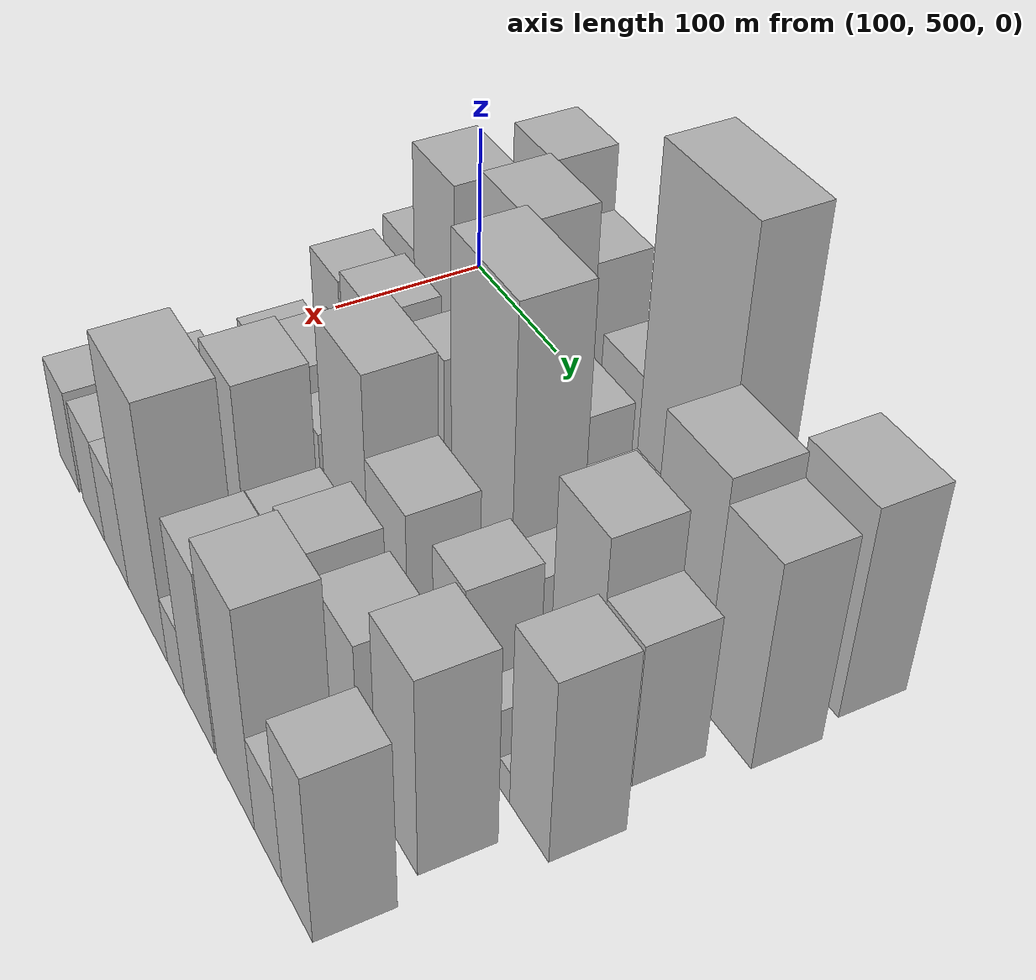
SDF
<sdf version="1.6">
 <world name="default">
  <model name="building_37">
   <static>1</static>
   <pose>100.0000 539.4834 0 0.000000 0.000000 0.000000</pose>
   <link name="link">
    <pose>0 0 15.00 0 0 0</pose>
    <collision name="collision"><geometry><box><size>40.0000 17.1339 30.0000</size></box></geometry></collision>
    <visual name="visual">
     <cast_shadows>0</cast_shadows>
     <geometry><box><size>40.0000 17.1339 30.0000</size></box></geometry>
     <material>
      <script>
       <uri>model://HANNAS_wall/materials/scripts</uri>
       <uri>model://HANNAS_wall/materials/textures</uri>
       <name>vrc/HANNAS_wall</name>
      </script>
     </material>
    </visual>
   </link>
  </model>
  <model name="building_38">
   <static>1</static>
   <pose>100.0000 562.8579 0 0.000000 0.000000 0.000000</pose>
   <link name="link">
    <pose>0 0 27.00 0 0 0</pose>
    <collision name="collision"><geometry><box><size>40.0000 29.6151 54.0000</size></box></geometry></collision>
    <visual name="visual">
     <cast_shadows>0</cast_shadows>
     <geometry><box><size>40.0000 29.6151 54.0000</size></box></geometry>
     <material>
      <script>
       <uri>model://HANNAS_wall/materials/scripts</uri>
       <uri>model://HANNAS_wall/materials/textures</uri>
       <name>vrc/HANNAS_wall</name>
      </script>
     </material>
    </visual>
   </link>
  </model>
  <model name="building_39">
   <static>1</static>
   <pose>100.0000 600.3225 0 0.000000 0.000000 0.000000</pose>
   <link name="link">
    <pose>0 0 75.00 0 0 0</pose>
    <collision name="collision"><geometry><box><size>40.0000 45.3142 150.0000</size></box></geometry></collision>
    <visual name="visual">
     <cast_shadows>0</cast_shadows>
     <geometry><box><size>40.0000 45.3142 150.0000</size></box></geometry>
     <material>
      <script>
       <uri>model://HANNAS_wall/materials/scripts</uri>
       <uri>model://HANNAS_wall/materials/textures</uri>
       <name>vrc/HANNAS_wall</name>
      </script>
     </material>
    </visual>
   </link>
  </model>
  <model name="building_40">
   <static>1</static>
   <pose>100.0000 643.9339 0 0.000000 0.000000 0.000000</pose>
   <link name="link">
    <pose>0 0 54.00 0 0 0</pose>
    <collision name="collision"><geometry><box><size>40.0000 41.9087 108.0000</size></box></geometry></collision>
    <visual name="visual">
     <cast_shadows>0</cast_shadows>
     <geometry><box><size>40.0000 41.9087 108.0000</size></box></geometry>
     <material>
      <script>
       <uri>model://HANNAS_wall/materials/scripts</uri>
       <uri>model://HANNAS_wall/materials/textures</uri>
       <name>vrc/HANNAS_wall</name>
      </script>
     </material>
    </visual>
   </link>
  </model>
  <model name="building_41">
   <static>1</static>
   <pose>100.0000 679.0799 0 0.000000 0.000000 0.000000</pose>
   <link name="link">
    <pose>0 0 9.00 0 0 0</pose>
    <collision name="collision"><geometry><box><size>40.0000 8.3832 18.0000</size></box></geometry></collision>
    <visual name="visual">
     <cast_shadows>0</cast_shadows>
     <geometry><box><size>40.0000 8.3832 18.0000</size></box></geometry>
     <material>
      <script>
       <uri>model://HANNAS_wall/materials/scripts</uri>
       <uri>model://HANNAS_wall/materials/textures</uri>
       <name>vrc/HANNAS_wall</name>
      </script>
     </material>
    </visual>
   </link>
  </model>
  <model name="building_42">
   <static>1</static>
   <pose>100.0000 703.9293 0 0.000000 0.000000 0.000000</pose>
   <link name="link">
    <pose>0 0 37.50 0 0 0</pose>
    <collision name="collision"><geometry><box><size>40.0000 41.3156 75.0000</size></box></geometry></collision>
    <visual name="visual">
     <cast_shadows>0</cast_shadows>
     <geometry><box><size>40.0000 41.3156 75.0000</size></box></geometry>
     <material>
      <script>
       <uri>model://HANNAS_wall/materials/scripts</uri>
       <uri>model://HANNAS_wall/materials/textures</uri>
       <name>vrc/HANNAS_wall</name>
      </script>
     </material>
    </visual>
   </link>
  </model>
  <model name="building_43">
   <static>1</static>
   <pose>100.0000 765.2655 0 0.000000 0.000000 0.000000</pose>
   <link name="link">
    <pose>0 0 109.50 0 0 0</pose>
    <collision name="collision"><geometry><box><size>40.0000 81.3567 219.0000</size></box></geometry></collision>
    <visual name="visual">
     <cast_shadows>0</cast_shadows>
     <geometry><box><size>40.0000 81.3567 219.0000</size></box></geometry>
     <material>
      <script>
       <uri>model://HANNAS_wall/materials/scripts</uri>
       <uri>model://HANNAS_wall/materials/textures</uri>
       <name>vrc/HANNAS_wall</name>
      </script>
     </material>
    </visual>
   </link>
  </model>
  <model name="building_44">
   <static>1</static>
   <pose>100.0000 826.5841 0 0.000000 0.000000 0.000000</pose>
   <link name="link">
    <pose>0 0 33.00 0 0 0</pose>
    <collision name="collision"><geometry><box><size>40.0000 35.2805 66.0000</size></box></geometry></collision>
    <visual name="visual">
     <cast_shadows>0</cast_shadows>
     <geometry><box><size>40.0000 35.2805 66.0000</size></box></geometry>
     <material>
      <script>
       <uri>model://HANNAS_wall/materials/scripts</uri>
       <uri>model://HANNAS_wall/materials/textures</uri>
       <name>vrc/HANNAS_wall</name>
      </script>
     </material>
    </visual>
   </link>
  </model>
  <model name="building_45">
   <static>1</static>
   <pose>100.0000 856.5739 0 0.000000 0.000000 0.000000</pose>
   <link name="link">
    <pose>0 0 7.50 0 0 0</pose>
    <collision name="collision"><geometry><box><size>40.0000 6.6992 15.0000</size></box></geometry></collision>
    <visual name="visual">
     <cast_shadows>0</cast_shadows>
     <geometry><box><size>40.0000 6.6992 15.0000</size></box></geometry>
     <material>
      <script>
       <uri>model://HANNAS_wall/materials/scripts</uri>
       <uri>model://HANNAS_wall/materials/textures</uri>
       <name>vrc/HANNAS_wall</name>
      </script>
     </material>
    </visual>
   </link>
  </model>
  <model name="building_46">
   <static>1</static>
   <pose>100.0000 886.7852 0 0.000000 0.000000 0.000000</pose>
   <link name="link">
    <pose>0 0 67.50 0 0 0</pose>
    <collision name="collision"><geometry><box><size>40.0000 53.7233 135.0000</size></box></geometry></collision>
    <visual name="visual">
     <cast_shadows>0</cast_shadows>
     <geometry><box><size>40.0000 53.7233 135.0000</size></box></geometry>
     <material>
      <script>
       <uri>model://HANNAS_wall/materials/scripts</uri>
       <uri>model://HANNAS_wall/materials/textures</uri>
       <name>vrc/HANNAS_wall</name>
      </script>
     </material>
    </visual>
   </link>
  </model>
  <model name="building_85">
   <static>1</static>
   <pose>155.0000 540.0962 0 0.000000 0.000000 0.000000</pose>
   <link name="link">
    <pose>0 0 36.00 0 0 0</pose>
    <collision name="collision"><geometry><box><size>40.0000 43.0639 72.0000</size></box></geometry></collision>
    <visual name="visual">
     <cast_shadows>0</cast_shadows>
     <geometry><box><size>40.0000 43.0639 72.0000</size></box></geometry>
     <material>
      <script>
       <uri>model://HANNAS_wall/materials/scripts</uri>
       <uri>model://HANNAS_wall/materials/textures</uri>
       <name>vrc/HANNAS_wall</name>
      </script>
     </material>
    </visual>
   </link>
  </model>
  <model name="building_86">
   <static>1</static>
   <pose>155.0000 587.0504 0 0.000000 0.000000 0.000000</pose>
   <link name="link">
    <pose>0 0 72.00 0 0 0</pose>
    <collision name="collision"><geometry><box><size>40.0000 50.8444 144.0000</size></box></geometry></collision>
    <visual name="visual">
     <cast_shadows>0</cast_shadows>
     <geometry><box><size>40.0000 50.8444 144.0000</size></box></geometry>
     <material>
      <script>
       <uri>model://HANNAS_wall/materials/scripts</uri>
       <uri>model://HANNAS_wall/materials/textures</uri>
       <name>vrc/HANNAS_wall</name>
      </script>
     </material>
    </visual>
   </link>
  </model>
  <model name="building_87">
   <static>1</static>
   <pose>155.0000 631.0761 0 0.000000 0.000000 0.000000</pose>
   <link name="link">
    <pose>0 0 25.50 0 0 0</pose>
    <collision name="collision"><geometry><box><size>40.0000 27.2070 51.0000</size></box></geometry></collision>
    <visual name="visual">
     <cast_shadows>0</cast_shadows>
     <geometry><box><size>40.0000 27.2070 51.0000</size></box></geometry>
     <material>
      <script>
       <uri>model://HANNAS_wall/materials/scripts</uri>
       <uri>model://HANNAS_wall/materials/textures</uri>
       <name>vrc/HANNAS_wall</name>
      </script>
     </material>
    </visual>
   </link>
  </model>
  <model name="building_88">
   <static>1</static>
   <pose>155.0000 670.8240 0 0.000000 0.000000 0.000000</pose>
   <link name="link">
    <pose>0 0 85.50 0 0 0</pose>
    <collision name="collision"><geometry><box><size>40.0000 52.2889 171.0000</size></box></geometry></collision>
    <visual name="visual">
     <cast_shadows>0</cast_shadows>
     <geometry><box><size>40.0000 52.2889 171.0000</size></box></geometry>
     <material>
      <script>
       <uri>model://HANNAS_wall/materials/scripts</uri>
       <uri>model://HANNAS_wall/materials/textures</uri>
       <name>vrc/HANNAS_wall</name>
      </script>
     </material>
    </visual>
   </link>
  </model>
  <model name="building_89">
   <static>1</static>
   <pose>155.0000 719.2011 0 0.000000 0.000000 0.000000</pose>
   <link name="link">
    <pose>0 0 37.50 0 0 0</pose>
    <collision name="collision"><geometry><box><size>40.0000 44.4654 75.0000</size></box></geometry></collision>
    <visual name="visual">
     <cast_shadows>0</cast_shadows>
     <geometry><box><size>40.0000 44.4654 75.0000</size></box></geometry>
     <material>
      <script>
       <uri>model://HANNAS_wall/materials/scripts</uri>
       <uri>model://HANNAS_wall/materials/textures</uri>
       <name>vrc/HANNAS_wall</name>
      </script>
     </material>
    </visual>
   </link>
  </model>
  <model name="building_90">
   <static>1</static>
   <pose>155.0000 760.2027 0 0.000000 0.000000 0.000000</pose>
   <link name="link">
    <pose>0 0 24.00 0 0 0</pose>
    <collision name="collision"><geometry><box><size>40.0000 27.5378 48.0000</size></box></geometry></collision>
    <visual name="visual">
     <cast_shadows>0</cast_shadows>
     <geometry><box><size>40.0000 27.5378 48.0000</size></box></geometry>
     <material>
      <script>
       <uri>model://HANNAS_wall/materials/scripts</uri>
       <uri>model://HANNAS_wall/materials/textures</uri>
       <name>vrc/HANNAS_wall</name>
      </script>
     </material>
    </visual>
   </link>
  </model>
  <model name="building_91">
   <static>1</static>
   <pose>155.0000 784.2340 0 0.000000 0.000000 0.000000</pose>
   <link name="link">
    <pose>0 0 19.50 0 0 0</pose>
    <collision name="collision"><geometry><box><size>40.0000 20.5246 39.0000</size></box></geometry></collision>
    <visual name="visual">
     <cast_shadows>0</cast_shadows>
     <geometry><box><size>40.0000 20.5246 39.0000</size></box></geometry>
     <material>
      <script>
       <uri>model://HANNAS_wall/materials/scripts</uri>
       <uri>model://HANNAS_wall/materials/textures</uri>
       <name>vrc/HANNAS_wall</name>
      </script>
     </material>
    </visual>
   </link>
  </model>
  <model name="building_92">
   <static>1</static>
   <pose>155.0000 810.3146 0 0.000000 0.000000 0.000000</pose>
   <link name="link">
    <pose>0 0 28.50 0 0 0</pose>
    <collision name="collision"><geometry><box><size>40.0000 31.6367 57.0000</size></box></geometry></collision>
    <visual name="visual">
     <cast_shadows>0</cast_shadows>
     <geometry><box><size>40.0000 31.6367 57.0000</size></box></geometry>
     <material>
      <script>
       <uri>model://HANNAS_wall/materials/scripts</uri>
       <uri>model://HANNAS_wall/materials/textures</uri>
       <name>vrc/HANNAS_wall</name>
      </script>
     </material>
    </visual>
   </link>
  </model>
  <model name="building_93">
   <static>1</static>
   <pose>155.0000 852.7420 0 0.000000 0.000000 0.000000</pose>
   <link name="link">
    <pose>0 0 73.50 0 0 0</pose>
    <collision name="collision"><geometry><box><size>40.0000 53.2181 147.0000</size></box></geometry></collision>
    <visual name="visual">
     <cast_shadows>0</cast_shadows>
     <geometry><box><size>40.0000 53.2181 147.0000</size></box></geometry>
     <material>
      <script>
       <uri>model://HANNAS_wall/materials/scripts</uri>
       <uri>model://HANNAS_wall/materials/textures</uri>
       <name>vrc/HANNAS_wall</name>
      </script>
     </material>
    </visual>
   </link>
  </model>
  <model name="building_94">
   <static>1</static>
   <pose>155.0000 900.2959 0 0.000000 0.000000 0.000000</pose>
   <link name="link">
    <pose>0 0 66.00 0 0 0</pose>
    <collision name="collision"><geometry><box><size>40.0000 41.8897 132.0000</size></box></geometry></collision>
    <visual name="visual">
     <cast_shadows>0</cast_shadows>
     <geometry><box><size>40.0000 41.8897 132.0000</size></box></geometry>
     <material>
      <script>
       <uri>model://HANNAS_wall/materials/scripts</uri>
       <uri>model://HANNAS_wall/materials/textures</uri>
       <name>vrc/HANNAS_wall</name>
      </script>
     </material>
    </visual>
   </link>
  </model>
  <model name="building_136">
   <static>1</static>
   <pose>210.0000 558.3514 0 0.000000 0.000000 0.000000</pose>
   <link name="link">
    <pose>0 0 39.00 0 0 0</pose>
    <collision name="collision"><geometry><box><size>40.0000 39.6162 78.0000</size></box></geometry></collision>
    <visual name="visual">
     <cast_shadows>0</cast_shadows>
     <geometry><box><size>40.0000 39.6162 78.0000</size></box></geometry>
     <material>
      <script>
       <uri>model://HANNAS_wall/materials/scripts</uri>
       <uri>model://HANNAS_wall/materials/textures</uri>
       <name>vrc/HANNAS_wall</name>
      </script>
     </material>
    </visual>
   </link>
  </model>
  <model name="building_137">
   <static>1</static>
   <pose>210.0000 604.2230 0 0.000000 0.000000 0.000000</pose>
   <link name="link">
    <pose>0 0 43.50 0 0 0</pose>
    <collision name="collision"><geometry><box><size>40.0000 46.1271 87.0000</size></box></geometry></collision>
    <visual name="visual">
     <cast_shadows>0</cast_shadows>
     <geometry><box><size>40.0000 46.1271 87.0000</size></box></geometry>
     <material>
      <script>
       <uri>model://HANNAS_wall/materials/scripts</uri>
       <uri>model://HANNAS_wall/materials/textures</uri>
       <name>vrc/HANNAS_wall</name>
      </script>
     </material>
    </visual>
   </link>
  </model>
  <model name="building_138">
   <static>1</static>
   <pose>210.0000 647.3601 0 0.000000 0.000000 0.000000</pose>
   <link name="link">
    <pose>0 0 34.50 0 0 0</pose>
    <collision name="collision"><geometry><box><size>40.0000 40.1471 69.0000</size></box></geometry></collision>
    <visual name="visual">
     <cast_shadows>0</cast_shadows>
     <geometry><box><size>40.0000 40.1471 69.0000</size></box></geometry>
     <material>
      <script>
       <uri>model://HANNAS_wall/materials/scripts</uri>
       <uri>model://HANNAS_wall/materials/textures</uri>
       <name>vrc/HANNAS_wall</name>
      </script>
     </material>
    </visual>
   </link>
  </model>
  <model name="building_139">
   <static>1</static>
   <pose>210.0000 692.8023 0 0.000000 0.000000 0.000000</pose>
   <link name="link">
    <pose>0 0 57.00 0 0 0</pose>
    <collision name="collision"><geometry><box><size>40.0000 36.7372 114.0000</size></box></geometry></collision>
    <visual name="visual">
     <cast_shadows>0</cast_shadows>
     <geometry><box><size>40.0000 36.7372 114.0000</size></box></geometry>
     <material>
      <script>
       <uri>model://HANNAS_wall/materials/scripts</uri>
       <uri>model://HANNAS_wall/materials/textures</uri>
       <name>vrc/HANNAS_wall</name>
      </script>
     </material>
    </visual>
   </link>
  </model>
  <model name="building_140">
   <static>1</static>
   <pose>210.0000 752.4921 0 0.000000 0.000000 0.000000</pose>
   <link name="link">
    <pose>0 0 99.00 0 0 0</pose>
    <collision name="collision"><geometry><box><size>40.0000 66.6424 198.0000</size></box></geometry></collision>
    <visual name="visual">
     <cast_shadows>0</cast_shadows>
     <geometry><box><size>40.0000 66.6424 198.0000</size></box></geometry>
     <material>
      <script>
       <uri>model://HANNAS_wall/materials/scripts</uri>
       <uri>model://HANNAS_wall/materials/textures</uri>
       <name>vrc/HANNAS_wall</name>
      </script>
     </material>
    </visual>
   </link>
  </model>
  <model name="building_141">
   <static>1</static>
   <pose>210.0000 800.3988 0 0.000000 0.000000 0.000000</pose>
   <link name="link">
    <pose>0 0 27.00 0 0 0</pose>
    <collision name="collision"><geometry><box><size>40.0000 29.1711 54.0000</size></box></geometry></collision>
    <visual name="visual">
     <cast_shadows>0</cast_shadows>
     <geometry><box><size>40.0000 29.1711 54.0000</size></box></geometry>
     <material>
      <script>
       <uri>model://HANNAS_wall/materials/scripts</uri>
       <uri>model://HANNAS_wall/materials/textures</uri>
       <name>vrc/HANNAS_wall</name>
      </script>
     </material>
    </visual>
   </link>
  </model>
  <model name="building_142">
   <static>1</static>
   <pose>210.0000 820.9042 0 0.000000 0.000000 0.000000</pose>
   <link name="link">
    <pose>0 0 13.50 0 0 0</pose>
    <collision name="collision"><geometry><box><size>40.0000 11.8397 27.0000</size></box></geometry></collision>
    <visual name="visual">
     <cast_shadows>0</cast_shadows>
     <geometry><box><size>40.0000 11.8397 27.0000</size></box></geometry>
     <material>
      <script>
       <uri>model://HANNAS_wall/materials/scripts</uri>
       <uri>model://HANNAS_wall/materials/textures</uri>
       <name>vrc/HANNAS_wall</name>
      </script>
     </material>
    </visual>
   </link>
  </model>
  <model name="building_143">
   <static>1</static>
   <pose>210.0000 849.6329 0 0.000000 0.000000 0.000000</pose>
   <link name="link">
    <pose>0 0 64.50 0 0 0</pose>
    <collision name="collision"><geometry><box><size>40.0000 45.6178 129.0000</size></box></geometry></collision>
    <visual name="visual">
     <cast_shadows>0</cast_shadows>
     <geometry><box><size>40.0000 45.6178 129.0000</size></box></geometry>
     <material>
      <script>
       <uri>model://HANNAS_wall/materials/scripts</uri>
       <uri>model://HANNAS_wall/materials/textures</uri>
       <name>vrc/HANNAS_wall</name>
      </script>
     </material>
    </visual>
   </link>
  </model>
  <model name="building_144">
   <static>1</static>
   <pose>210.0000 888.8440 0 0.000000 0.000000 0.000000</pose>
   <link name="link">
    <pose>0 0 46.50 0 0 0</pose>
    <collision name="collision"><geometry><box><size>40.0000 32.8044 93.0000</size></box></geometry></collision>
    <visual name="visual">
     <cast_shadows>0</cast_shadows>
     <geometry><box><size>40.0000 32.8044 93.0000</size></box></geometry>
     <material>
      <script>
       <uri>model://HANNAS_wall/materials/scripts</uri>
       <uri>model://HANNAS_wall/materials/textures</uri>
       <name>vrc/HANNAS_wall</name>
      </script>
     </material>
    </visual>
   </link>
  </model>
  <model name="building_188">
   <static>1</static>
   <pose>265.0000 578.9576 0 0.000000 0.000000 0.000000</pose>
   <link name="link">
    <pose>0 0 30.00 0 0 0</pose>
    <collision name="collision"><geometry><box><size>40.0000 35.4940 60.0000</size></box></geometry></collision>
    <visual name="visual">
     <cast_shadows>0</cast_shadows>
     <geometry><box><size>40.0000 35.4940 60.0000</size></box></geometry>
     <material>
      <script>
       <uri>model://HANNAS_wall/materials/scripts</uri>
       <uri>model://HANNAS_wall/materials/textures</uri>
       <name>vrc/HANNAS_wall</name>
      </script>
     </material>
    </visual>
   </link>
  </model>
  <model name="building_189">
   <static>1</static>
   <pose>265.0000 619.3777 0 0.000000 0.000000 0.000000</pose>
   <link name="link">
    <pose>0 0 39.00 0 0 0</pose>
    <collision name="collision"><geometry><box><size>40.0000 45.3461 78.0000</size></box></geometry></collision>
    <visual name="visual">
     <cast_shadows>0</cast_shadows>
     <geometry><box><size>40.0000 45.3461 78.0000</size></box></geometry>
     <material>
      <script>
       <uri>model://HANNAS_wall/materials/scripts</uri>
       <uri>model://HANNAS_wall/materials/textures</uri>
       <name>vrc/HANNAS_wall</name>
      </script>
     </material>
    </visual>
   </link>
  </model>
  <model name="building_190">
   <static>1</static>
   <pose>265.0000 658.6662 0 0.000000 0.000000 0.000000</pose>
   <link name="link">
    <pose>0 0 30.00 0 0 0</pose>
    <collision name="collision"><geometry><box><size>40.0000 33.2310 60.0000</size></box></geometry></collision>
    <visual name="visual">
     <cast_shadows>0</cast_shadows>
     <geometry><box><size>40.0000 33.2310 60.0000</size></box></geometry>
     <material>
      <script>
       <uri>model://HANNAS_wall/materials/scripts</uri>
       <uri>model://HANNAS_wall/materials/textures</uri>
       <name>vrc/HANNAS_wall</name>
      </script>
     </material>
    </visual>
   </link>
  </model>
  <model name="building_191">
   <static>1</static>
   <pose>265.0000 707.7180 0 0.000000 0.000000 0.000000</pose>
   <link name="link">
    <pose>0 0 70.50 0 0 0</pose>
    <collision name="collision"><geometry><box><size>40.0000 54.8727 141.0000</size></box></geometry></collision>
    <visual name="visual">
     <cast_shadows>0</cast_shadows>
     <geometry><box><size>40.0000 54.8727 141.0000</size></box></geometry>
     <material>
      <script>
       <uri>model://HANNAS_wall/materials/scripts</uri>
       <uri>model://HANNAS_wall/materials/textures</uri>
       <name>vrc/HANNAS_wall</name>
      </script>
     </material>
    </visual>
   </link>
  </model>
  <model name="building_192">
   <static>1</static>
   <pose>265.0000 758.1718 0 0.000000 0.000000 0.000000</pose>
   <link name="link">
    <pose>0 0 45.00 0 0 0</pose>
    <collision name="collision"><geometry><box><size>40.0000 46.0349 90.0000</size></box></geometry></collision>
    <visual name="visual">
     <cast_shadows>0</cast_shadows>
     <geometry><box><size>40.0000 46.0349 90.0000</size></box></geometry>
     <material>
      <script>
       <uri>model://HANNAS_wall/materials/scripts</uri>
       <uri>model://HANNAS_wall/materials/textures</uri>
       <name>vrc/HANNAS_wall</name>
      </script>
     </material>
    </visual>
   </link>
  </model>
  <model name="building_193">
   <static>1</static>
   <pose>265.0000 798.5946 0 0.000000 0.000000 0.000000</pose>
   <link name="link">
    <pose>0 0 19.50 0 0 0</pose>
    <collision name="collision"><geometry><box><size>40.0000 22.8107 39.0000</size></box></geometry></collision>
    <visual name="visual">
     <cast_shadows>0</cast_shadows>
     <geometry><box><size>40.0000 22.8107 39.0000</size></box></geometry>
     <material>
      <script>
       <uri>model://HANNAS_wall/materials/scripts</uri>
       <uri>model://HANNAS_wall/materials/textures</uri>
       <name>vrc/HANNAS_wall</name>
      </script>
     </material>
    </visual>
   </link>
  </model>
  <model name="building_194">
   <static>1</static>
   <pose>265.0000 826.6407 0 0.000000 0.000000 0.000000</pose>
   <link name="link">
    <pose>0 0 48.00 0 0 0</pose>
    <collision name="collision"><geometry><box><size>40.0000 33.2814 96.0000</size></box></geometry></collision>
    <visual name="visual">
     <cast_shadows>0</cast_shadows>
     <geometry><box><size>40.0000 33.2814 96.0000</size></box></geometry>
     <material>
      <script>
       <uri>model://HANNAS_wall/materials/scripts</uri>
       <uri>model://HANNAS_wall/materials/textures</uri>
       <name>vrc/HANNAS_wall</name>
      </script>
     </material>
    </visual>
   </link>
  </model>
  <model name="building_195">
   <static>1</static>
   <pose>265.0000 859.7867 0 0.000000 0.000000 0.000000</pose>
   <link name="link">
    <pose>0 0 21.00 0 0 0</pose>
    <collision name="collision"><geometry><box><size>40.0000 21.0107 42.0000</size></box></geometry></collision>
    <visual name="visual">
     <cast_shadows>0</cast_shadows>
     <geometry><box><size>40.0000 21.0107 42.0000</size></box></geometry>
     <material>
      <script>
       <uri>model://HANNAS_wall/materials/scripts</uri>
       <uri>model://HANNAS_wall/materials/textures</uri>
       <name>vrc/HANNAS_wall</name>
      </script>
     </material>
    </visual>
   </link>
  </model>
  <model name="building_196">
   <static>1</static>
   <pose>265.0000 883.4000 0 0.000000 0.000000 0.000000</pose>
   <link name="link">
    <pose>0 0 10.50 0 0 0</pose>
    <collision name="collision"><geometry><box><size>40.0000 10.2159 21.0000</size></box></geometry></collision>
    <visual name="visual">
     <cast_shadows>0</cast_shadows>
     <geometry><box><size>40.0000 10.2159 21.0000</size></box></geometry>
     <material>
      <script>
       <uri>model://HANNAS_wall/materials/scripts</uri>
       <uri>model://HANNAS_wall/materials/textures</uri>
       <name>vrc/HANNAS_wall</name>
      </script>
     </material>
    </visual>
   </link>
  </model>
  <model name="building_197">
   <static>1</static>
   <pose>265.0000 906.9678 0 0.000000 0.000000 0.000000</pose>
   <link name="link">
    <pose>0 0 58.50 0 0 0</pose>
    <collision name="collision"><geometry><box><size>40.0000 36.9196 117.0000</size></box></geometry></collision>
    <visual name="visual">
     <cast_shadows>0</cast_shadows>
     <geometry><box><size>40.0000 36.9196 117.0000</size></box></geometry>
     <material>
      <script>
       <uri>model://HANNAS_wall/materials/scripts</uri>
       <uri>model://HANNAS_wall/materials/textures</uri>
       <name>vrc/HANNAS_wall</name>
      </script>
     </material>
    </visual>
   </link>
  </model>
  <model name="building_238">
   <static>1</static>
   <pose>320.0000 549.3088 0 0.000000 0.000000 0.000000</pose>
   <link name="link">
    <pose>0 0 21.00 0 0 0</pose>
    <collision name="collision"><geometry><box><size>40.0000 21.6463 42.0000</size></box></geometry></collision>
    <visual name="visual">
     <cast_shadows>0</cast_shadows>
     <geometry><box><size>40.0000 21.6463 42.0000</size></box></geometry>
     <material>
      <script>
       <uri>model://HANNAS_wall/materials/scripts</uri>
       <uri>model://HANNAS_wall/materials/textures</uri>
       <name>vrc/HANNAS_wall</name>
      </script>
     </material>
    </visual>
   </link>
  </model>
  <model name="building_239">
   <static>1</static>
   <pose>320.0000 579.1509 0 0.000000 0.000000 0.000000</pose>
   <link name="link">
    <pose>0 0 24.00 0 0 0</pose>
    <collision name="collision"><geometry><box><size>40.0000 28.0380 48.0000</size></box></geometry></collision>
    <visual name="visual">
     <cast_shadows>0</cast_shadows>
     <geometry><box><size>40.0000 28.0380 48.0000</size></box></geometry>
     <material>
      <script>
       <uri>model://HANNAS_wall/materials/scripts</uri>
       <uri>model://HANNAS_wall/materials/textures</uri>
       <name>vrc/HANNAS_wall</name>
      </script>
     </material>
    </visual>
   </link>
  </model>
  <model name="building_240">
   <static>1</static>
   <pose>320.0000 611.2269 0 0.000000 0.000000 0.000000</pose>
   <link name="link">
    <pose>0 0 31.50 0 0 0</pose>
    <collision name="collision"><geometry><box><size>40.0000 36.1139 63.0000</size></box></geometry></collision>
    <visual name="visual">
     <cast_shadows>0</cast_shadows>
     <geometry><box><size>40.0000 36.1139 63.0000</size></box></geometry>
     <material>
      <script>
       <uri>model://HANNAS_wall/materials/scripts</uri>
       <uri>model://HANNAS_wall/materials/textures</uri>
       <name>vrc/HANNAS_wall</name>
      </script>
     </material>
    </visual>
   </link>
  </model>
  <model name="building_241">
   <static>1</static>
   <pose>320.0000 647.6502 0 0.000000 0.000000 0.000000</pose>
   <link name="link">
    <pose>0 0 49.50 0 0 0</pose>
    <collision name="collision"><geometry><box><size>40.0000 36.7329 99.0000</size></box></geometry></collision>
    <visual name="visual">
     <cast_shadows>0</cast_shadows>
     <geometry><box><size>40.0000 36.7329 99.0000</size></box></geometry>
     <material>
      <script>
       <uri>model://HANNAS_wall/materials/scripts</uri>
       <uri>model://HANNAS_wall/materials/textures</uri>
       <name>vrc/HANNAS_wall</name>
      </script>
     </material>
    </visual>
   </link>
  </model>
  <model name="building_242">
   <static>1</static>
   <pose>320.0000 687.2312 0 0.000000 0.000000 0.000000</pose>
   <link name="link">
    <pose>0 0 67.50 0 0 0</pose>
    <collision name="collision"><geometry><box><size>40.0000 42.4290 135.0000</size></box></geometry></collision>
    <visual name="visual">
     <cast_shadows>0</cast_shadows>
     <geometry><box><size>40.0000 42.4290 135.0000</size></box></geometry>
     <material>
      <script>
       <uri>model://HANNAS_wall/materials/scripts</uri>
       <uri>model://HANNAS_wall/materials/textures</uri>
       <name>vrc/HANNAS_wall</name>
      </script>
     </material>
    </visual>
   </link>
  </model>
  <model name="building_243">
   <static>1</static>
   <pose>320.0000 711.6658 0 0.000000 0.000000 0.000000</pose>
   <link name="link">
    <pose>0 0 7.50 0 0 0</pose>
    <collision name="collision"><geometry><box><size>40.0000 6.4404 15.0000</size></box></geometry></collision>
    <visual name="visual">
     <cast_shadows>0</cast_shadows>
     <geometry><box><size>40.0000 6.4404 15.0000</size></box></geometry>
     <material>
      <script>
       <uri>model://HANNAS_wall/materials/scripts</uri>
       <uri>model://HANNAS_wall/materials/textures</uri>
       <name>vrc/HANNAS_wall</name>
      </script>
     </material>
    </visual>
   </link>
  </model>
  <model name="building_244">
   <static>1</static>
   <pose>320.0000 734.2837 0 0.000000 0.000000 0.000000</pose>
   <link name="link">
    <pose>0 0 37.50 0 0 0</pose>
    <collision name="collision"><geometry><box><size>40.0000 38.7954 75.0000</size></box></geometry></collision>
    <visual name="visual">
     <cast_shadows>0</cast_shadows>
     <geometry><box><size>40.0000 38.7954 75.0000</size></box></geometry>
     <material>
      <script>
       <uri>model://HANNAS_wall/materials/scripts</uri>
       <uri>model://HANNAS_wall/materials/textures</uri>
       <name>vrc/HANNAS_wall</name>
      </script>
     </material>
    </visual>
   </link>
  </model>
  <model name="building_245">
   <static>1</static>
   <pose>320.0000 771.7707 0 0.000000 0.000000 0.000000</pose>
   <link name="link">
    <pose>0 0 48.00 0 0 0</pose>
    <collision name="collision"><geometry><box><size>40.0000 36.1785 96.0000</size></box></geometry></collision>
    <visual name="visual">
     <cast_shadows>0</cast_shadows>
     <geometry><box><size>40.0000 36.1785 96.0000</size></box></geometry>
     <material>
      <script>
       <uri>model://HANNAS_wall/materials/scripts</uri>
       <uri>model://HANNAS_wall/materials/textures</uri>
       <name>vrc/HANNAS_wall</name>
      </script>
     </material>
    </visual>
   </link>
  </model>
  <model name="building_246">
   <static>1</static>
   <pose>320.0000 793.0314 0 0.000000 0.000000 0.000000</pose>
   <link name="link">
    <pose>0 0 7.50 0 0 0</pose>
    <collision name="collision"><geometry><box><size>40.0000 6.3430 15.0000</size></box></geometry></collision>
    <visual name="visual">
     <cast_shadows>0</cast_shadows>
     <geometry><box><size>40.0000 6.3430 15.0000</size></box></geometry>
     <material>
      <script>
       <uri>model://HANNAS_wall/materials/scripts</uri>
       <uri>model://HANNAS_wall/materials/textures</uri>
       <name>vrc/HANNAS_wall</name>
      </script>
     </material>
    </visual>
   </link>
  </model>
  <model name="building_247">
   <static>1</static>
   <pose>320.0000 819.8651 0 0.000000 0.000000 0.000000</pose>
   <link name="link">
    <pose>0 0 43.50 0 0 0</pose>
    <collision name="collision"><geometry><box><size>40.0000 47.3244 87.0000</size></box></geometry></collision>
    <visual name="visual">
     <cast_shadows>0</cast_shadows>
     <geometry><box><size>40.0000 47.3244 87.0000</size></box></geometry>
     <material>
      <script>
       <uri>model://HANNAS_wall/materials/scripts</uri>
       <uri>model://HANNAS_wall/materials/textures</uri>
       <name>vrc/HANNAS_wall</name>
      </script>
     </material>
    </visual>
   </link>
  </model>
  <model name="building_248">
   <static>1</static>
   <pose>320.0000 853.3664 0 0.000000 0.000000 0.000000</pose>
   <link name="link">
    <pose>0 0 18.00 0 0 0</pose>
    <collision name="collision"><geometry><box><size>40.0000 19.6783 36.0000</size></box></geometry></collision>
    <visual name="visual">
     <cast_shadows>0</cast_shadows>
     <geometry><box><size>40.0000 19.6783 36.0000</size></box></geometry>
     <material>
      <script>
       <uri>model://HANNAS_wall/materials/scripts</uri>
       <uri>model://HANNAS_wall/materials/textures</uri>
       <name>vrc/HANNAS_wall</name>
      </script>
     </material>
    </visual>
   </link>
  </model>
  <model name="building_249">
   <static>1</static>
   <pose>320.0000 884.4541 0 0.000000 0.000000 0.000000</pose>
   <link name="link">
    <pose>0 0 63.00 0 0 0</pose>
    <collision name="collision"><geometry><box><size>40.0000 42.4970 126.0000</size></box></geometry></collision>
    <visual name="visual">
     <cast_shadows>0</cast_shadows>
     <geometry><box><size>40.0000 42.4970 126.0000</size></box></geometry>
     <material>
      <script>
       <uri>model://HANNAS_wall/materials/scripts</uri>
       <uri>model://HANNAS_wall/materials/textures</uri>
       <name>vrc/HANNAS_wall</name>
      </script>
     </material>
    </visual>
   </link>
  </model>
  <model name="building_291">
   <static>1</static>
   <pose>375.0000 576.6557 0 0.000000 0.000000 0.000000</pose>
   <link name="link">
    <pose>0 0 34.50 0 0 0</pose>
    <collision name="collision"><geometry><box><size>40.0000 35.1930 69.0000</size></box></geometry></collision>
    <visual name="visual">
     <cast_shadows>0</cast_shadows>
     <geometry><box><size>40.0000 35.1930 69.0000</size></box></geometry>
     <material>
      <script>
       <uri>model://HANNAS_wall/materials/scripts</uri>
       <uri>model://HANNAS_wall/materials/textures</uri>
       <name>vrc/HANNAS_wall</name>
      </script>
     </material>
    </visual>
   </link>
  </model>
  <model name="building_292">
   <static>1</static>
   <pose>375.0000 619.8061 0 0.000000 0.000000 0.000000</pose>
   <link name="link">
    <pose>0 0 34.50 0 0 0</pose>
    <collision name="collision"><geometry><box><size>40.0000 37.1077 69.0000</size></box></geometry></collision>
    <visual name="visual">
     <cast_shadows>0</cast_shadows>
     <geometry><box><size>40.0000 37.1077 69.0000</size></box></geometry>
     <material>
      <script>
       <uri>model://HANNAS_wall/materials/scripts</uri>
       <uri>model://HANNAS_wall/materials/textures</uri>
       <name>vrc/HANNAS_wall</name>
      </script>
     </material>
    </visual>
   </link>
  </model>
  <model name="building_293">
   <static>1</static>
   <pose>375.0000 657.5178 0 0.000000 0.000000 0.000000</pose>
   <link name="link">
    <pose>0 0 34.50 0 0 0</pose>
    <collision name="collision"><geometry><box><size>40.0000 38.3158 69.0000</size></box></geometry></collision>
    <visual name="visual">
     <cast_shadows>0</cast_shadows>
     <geometry><box><size>40.0000 38.3158 69.0000</size></box></geometry>
     <material>
      <script>
       <uri>model://HANNAS_wall/materials/scripts</uri>
       <uri>model://HANNAS_wall/materials/textures</uri>
       <name>vrc/HANNAS_wall</name>
      </script>
     </material>
    </visual>
   </link>
  </model>
  <model name="building_294">
   <static>1</static>
   <pose>375.0000 706.3991 0 0.000000 0.000000 0.000000</pose>
   <link name="link">
    <pose>0 0 82.50 0 0 0</pose>
    <collision name="collision"><geometry><box><size>40.0000 59.4468 165.0000</size></box></geometry></collision>
    <visual name="visual">
     <cast_shadows>0</cast_shadows>
     <geometry><box><size>40.0000 59.4468 165.0000</size></box></geometry>
     <material>
      <script>
       <uri>model://HANNAS_wall/materials/scripts</uri>
       <uri>model://HANNAS_wall/materials/textures</uri>
       <name>vrc/HANNAS_wall</name>
      </script>
     </material>
    </visual>
   </link>
  </model>
  <model name="building_295">
   <static>1</static>
   <pose>375.0000 748.0486 0 0.000000 0.000000 0.000000</pose>
   <link name="link">
    <pose>0 0 22.50 0 0 0</pose>
    <collision name="collision"><geometry><box><size>40.0000 23.8522 45.0000</size></box></geometry></collision>
    <visual name="visual">
     <cast_shadows>0</cast_shadows>
     <geometry><box><size>40.0000 23.8522 45.0000</size></box></geometry>
     <material>
      <script>
       <uri>model://HANNAS_wall/materials/scripts</uri>
       <uri>model://HANNAS_wall/materials/textures</uri>
       <name>vrc/HANNAS_wall</name>
      </script>
     </material>
    </visual>
   </link>
  </model>
  <model name="building_296">
   <static>1</static>
   <pose>375.0000 780.2772 0 0.000000 0.000000 0.000000</pose>
   <link name="link">
    <pose>0 0 58.50 0 0 0</pose>
    <collision name="collision"><geometry><box><size>40.0000 40.6050 117.0000</size></box></geometry></collision>
    <visual name="visual">
     <cast_shadows>0</cast_shadows>
     <geometry><box><size>40.0000 40.6050 117.0000</size></box></geometry>
     <material>
      <script>
       <uri>model://HANNAS_wall/materials/scripts</uri>
       <uri>model://HANNAS_wall/materials/textures</uri>
       <name>vrc/HANNAS_wall</name>
      </script>
     </material>
    </visual>
   </link>
  </model>
  <model name="building_297">
   <static>1</static>
   <pose>375.0000 827.1428 0 0.000000 0.000000 0.000000</pose>
   <link name="link">
    <pose>0 0 70.50 0 0 0</pose>
    <collision name="collision"><geometry><box><size>40.0000 47.1262 141.0000</size></box></geometry></collision>
    <visual name="visual">
     <cast_shadows>0</cast_shadows>
     <geometry><box><size>40.0000 47.1262 141.0000</size></box></geometry>
     <material>
      <script>
       <uri>model://HANNAS_wall/materials/scripts</uri>
       <uri>model://HANNAS_wall/materials/textures</uri>
       <name>vrc/HANNAS_wall</name>
      </script>
     </material>
    </visual>
   </link>
  </model>
  <model name="building_298">
   <static>1</static>
   <pose>375.0000 866.7772 0 0.000000 0.000000 0.000000</pose>
   <link name="link">
    <pose>0 0 31.50 0 0 0</pose>
    <collision name="collision"><geometry><box><size>40.0000 32.1426 63.0000</size></box></geometry></collision>
    <visual name="visual">
     <cast_shadows>0</cast_shadows>
     <geometry><box><size>40.0000 32.1426 63.0000</size></box></geometry>
     <material>
      <script>
       <uri>model://HANNAS_wall/materials/scripts</uri>
       <uri>model://HANNAS_wall/materials/textures</uri>
       <name>vrc/HANNAS_wall</name>
      </script>
     </material>
    </visual>
   </link>
  </model>
  <model name="building_299">
   <static>1</static>
   <pose>375.0000 899.8120 0 0.000000 0.000000 0.000000</pose>
   <link name="link">
    <pose>0 0 54.00 0 0 0</pose>
    <collision name="collision"><geometry><box><size>40.0000 33.9269 108.0000</size></box></geometry></collision>
    <visual name="visual">
     <cast_shadows>0</cast_shadows>
     <geometry><box><size>40.0000 33.9269 108.0000</size></box></geometry>
     <material>
      <script>
       <uri>model://HANNAS_wall/materials/scripts</uri>
       <uri>model://HANNAS_wall/materials/textures</uri>
       <name>vrc/HANNAS_wall</name>
      </script>
     </material>
    </visual>
   </link>
  </model>
 </world>
</sdf>
